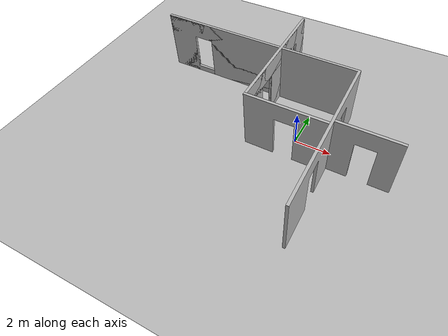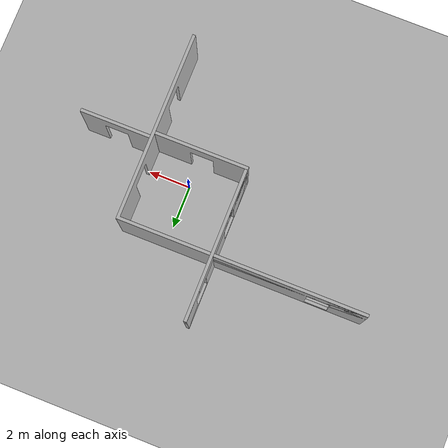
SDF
<?xml version="1.0" ?>
<sdf version="1.9">
  <world name="iris_runway_0_woqr_models">
    <physics name="1ms" type="ignore">
      <max_step_size>0.001</max_step_size>
      <real_time_factor>1.0</real_time_factor>
    </physics>

    <plugin filename="gz-sim-physics-system"
      name="gz::sim::systems::Physics">
    </plugin>
    <plugin
      filename="gz-sim-sensors-system"
      name="gz::sim::systems::Sensors">
      <render_engine>ogre2</render_engine>
    </plugin>
    <plugin filename="gz-sim-user-commands-system"
      name="gz::sim::systems::UserCommands">
    </plugin>
    <plugin filename="gz-sim-scene-broadcaster-system"
      name="gz::sim::systems::SceneBroadcaster">
    </plugin>
    <plugin filename="gz-sim-imu-system"
      name="gz::sim::systems::Imu">
    </plugin>

    <scene>
      <ambient>1.0 1.0 1.0</ambient>
      <background>0.8 0.8 0.8</background>
      <sky></sky>
    </scene>

    <spherical_coordinates>
      <latitude_deg>-35.363262</latitude_deg>
      <longitude_deg>149.165237</longitude_deg>
      <elevation>584</elevation>
      <heading_deg>0</heading_deg>
      <surface_model>EARTH_WGS84</surface_model>
    </spherical_coordinates>

    <light type="directional" name="sun">
      <cast_shadows>true</cast_shadows>
      <pose>0 0 10 0 0 0</pose>
      <diffuse>0.8 0.8 0.8 1</diffuse>
      <specular>0.8 0.8 0.8 1</specular>
      <attenuation>
        <range>1000</range>
        <constant>0.9</constant>
        <linear>0.01</linear>
        <quadratic>0.001</quadratic>
      </attenuation>
      <direction>-0.5 0.1 -0.9</direction>
    </light>

    <include>
      <name>ground_my</name>
      <uri>model://ground_my</uri>
      <pose relative_to="world">0 0 0 0 0 0</pose>
    </include>

    <include>
      <name>0_floor</name>
      <uri>model://0_floor</uri>
      <static>true</static>
      <pose relative_to="world">0 0 0 0 0 0</pose>
    </include>

    <include>
      <name>0_wall_1</name>
      <uri>model://0_wall_1</uri>
      <static>true</static>
      <pose relative_to="world">0 0 0 0 0 0</pose>
    </include>

    <include>
      <name>0_wall_2</name>
      <uri>model://0_wall_2</uri>
      <static>true</static>
      <pose relative_to="world">0 0 0 0 0 0</pose>
    </include>

    <include>
      <name>0_wall_1_woqr</name>
      <uri>model://0_wall_1_woqr</uri>
      <static>true</static>
      <pose relative_to="world">0 0 0 0 0 0</pose>
    </include>

    <include>
      <name>0_wall_2_woqr</name>
      <uri>model://0_wall_2_woqr</uri>
      <static>true</static>
      <pose relative_to="world">0 0 0 0 0 0</pose>
    </include>

    <include>
      <name>0_wall_3_woqr</name>
      <uri>model://0_wall_3_woqr</uri>
      <static>true</static>
      <pose relative_to="world">0 0 0 0 0 0</pose>
    </include>

    <include>
      <name>0_wall_4_woqr</name>
      <uri>model://0_wall_4_woqr</uri>
      <static>true</static>
      <pose relative_to="world">0 0 0 0 0 0</pose>
    </include>

    <include>
      <name>0_wall_5_woqr</name>
      <uri>model://0_wall_5_woqr</uri>
      <static>true</static>
      <pose relative_to="world">0 0 0 0 0 0</pose>
    </include>
  </world>
</sdf>

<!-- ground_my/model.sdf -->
<sdf version="1.5">
    <model name="ground">
        <static>true</static>
        <link name="link">
            <collision name="collision">
                <geometry>
                    <mesh>
                        <scale>1 1 1</scale>
                        <uri>meshes/ground.dae</uri>
                    </mesh>
                </geometry>
                <surface>
                    <friction>
                        <ode>
                            <mu>1.2</mu>
                            <mu2>1.2</mu2>
                        </ode>
                    </friction>
                </surface>
            </collision>
            <visual name="visual">
              <geometry>
                <mesh>
                    <scale>1 1 1</scale>
                    <uri>meshes/ground.dae</uri>
                </mesh>
              </geometry>
             </visual>
        </link>
    </model>
</sdf>

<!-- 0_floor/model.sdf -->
<sdf version="1.5">
    <model name="floor">
        <static>true</static>
        <link name="link">
            <collision name="collision1">
                <pose>0 0 0 0 0 0</pose>
                <geometry>
                    <mesh>
                        <uri>meshes/floor.dae</uri>
                    </mesh>
                </geometry>
            </collision>
            <visual name="visual1">
              <pose>0 0 0 0 0 0</pose>
              <geometry>
              <mesh>
                 <uri>meshes/floor.dae</uri>
              </mesh>
              </geometry>
             </visual>
        </link>
    </model>
</sdf>

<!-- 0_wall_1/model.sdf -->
<sdf version="1.5">
    <model name="0_wall_1">
        <static>true</static>
        <link name="link">
            <collision name="collision1">
                <pose>0 0 0 0 0 0</pose>
                <geometry>
                    <mesh>
                        <uri>meshes/0_wall_1.dae</uri>
                    </mesh>
                </geometry>
            </collision>
            <visual name="visual1">
              <pose>0 0 0 0 0 0</pose>
              <geometry>
              <mesh>
                 <uri>meshes/0_wall_1.dae</uri>
              </mesh>
              </geometry>
             </visual>
        </link>
    </model>
</sdf>

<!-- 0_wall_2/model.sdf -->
<sdf version="1.5">
    <model name="0_wall_2">
        <static>true</static>
        <link name="link">
            <collision name="collision1">
                <pose>0 0 0 0 0 0</pose>
                <geometry>
                    <mesh>
                        <uri>meshes/0_wall_2.dae</uri>
                    </mesh>
                </geometry>
            </collision>
            <visual name="visual1">
              <pose>0 0 0 0 0 0</pose>
              <geometry>
              <mesh>
                 <uri>meshes/0_wall_2.dae</uri>
              </mesh>
              </geometry>
             </visual>
        </link>
    </model>
</sdf>

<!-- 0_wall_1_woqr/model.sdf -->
<sdf version="1.5">
    <model name="0_wall_1_woqr">
        <static>true</static>
        <link name="link">
            <collision name="collision1">
                <pose>0 0 0 0 0 0</pose>
                <geometry>
                    <mesh>
                        <uri>meshes/0_wall_1_woqr.dae</uri>
                    </mesh>
                </geometry>
            </collision>
            <visual name="visual1">
              <pose>0 0 0 0 0 0</pose>
              <geometry>
              <mesh>
                 <uri>meshes/0_wall_1_woqr.dae</uri>
              </mesh>
              </geometry>
             </visual>
        </link>
    </model>
</sdf>

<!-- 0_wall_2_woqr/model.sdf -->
<sdf version="1.5">
    <model name="0_wall_2_woqr">
        <static>true</static>
        <link name="link">
            <collision name="collision1">
                <pose>0 0 0 0 0 0</pose>
                <geometry>
                    <mesh>
                        <uri>meshes/0_wall_2_woqr.dae</uri>
                    </mesh>
                </geometry>
            </collision>
            <visual name="visual1">
              <pose>0 0 0 0 0 0</pose>
              <geometry>
              <mesh>
                 <uri>meshes/0_wall_2_woqr.dae</uri>
              </mesh>
              </geometry>
             </visual>
        </link>
    </model>
</sdf>

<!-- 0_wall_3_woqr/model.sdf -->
<sdf version="1.5">
    <model name="0_wall_3_woqr">
        <static>true</static>
        <link name="link">
            <collision name="collision1">
                <pose>0 0 0 0 0 0</pose>
                <geometry>
                    <mesh>
                        <uri>meshes/0_wall_3_woqr.dae</uri>
                    </mesh>
                </geometry>
            </collision>
            <visual name="visual1">
              <pose>0 0 0 0 0 0</pose>
              <geometry>
              <mesh>
                 <uri>meshes/0_wall_3_woqr.dae</uri>
              </mesh>
              </geometry>
             </visual>
        </link>
    </model>
</sdf>

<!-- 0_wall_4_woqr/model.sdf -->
<sdf version="1.5">
    <model name="0_wall_4_woqr">
        <static>true</static>
        <link name="link">
            <collision name="collision1">
                <pose>0 0 0 0 0 0</pose>
                <geometry>
                    <mesh>
                        <uri>meshes/0_wall_4_woqr.dae</uri>
                    </mesh>
                </geometry>
            </collision>
            <visual name="visual1">
              <pose>0 0 0 0 0 0</pose>
              <geometry>
              <mesh>
                 <uri>meshes/0_wall_4_woqr.dae</uri>
              </mesh>
              </geometry>
             </visual>
        </link>
    </model>
</sdf>

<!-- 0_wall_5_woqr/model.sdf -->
<sdf version="1.5">
    <model name="0_wall_5_woqr">
        <static>true</static>
        <link name="link">
            <collision name="collision1">
                <pose>0 0 0 0 0 0</pose>
                <geometry>
                    <mesh>
                        <uri>meshes/0_wall_5_woqr.dae</uri>
                    </mesh>
                </geometry>
            </collision>
            <visual name="visual1">
              <pose>0 0 0 0 0 0</pose>
              <geometry>
              <mesh>
                 <uri>meshes/0_wall_5_woqr.dae</uri>
              </mesh>
              </geometry>
             </visual>
        </link>
    </model>
</sdf>
